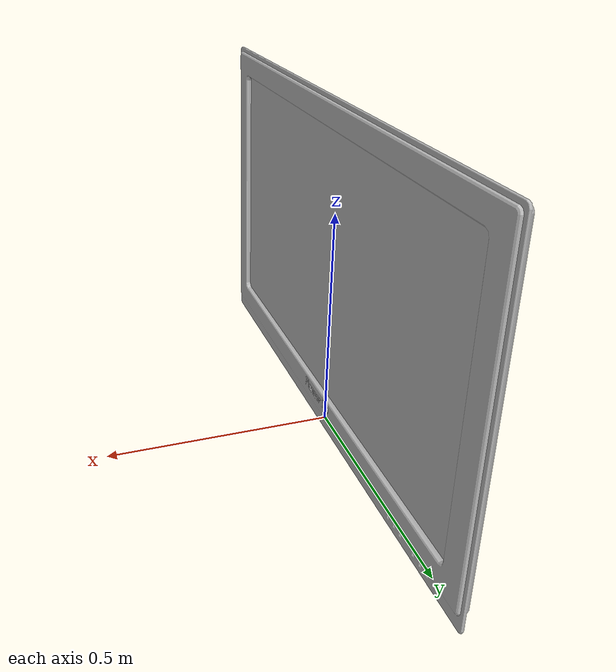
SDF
<?xml version='1.0'?>
<sdf version='1.4'>
  <model name='228'>
    <pose>0 0 0 0 0 0</pose>
    <static>true</static>
    <link name='link'>
      <collision name='collision'>
        <pose>0 0 0 0 0 0</pose>
        <geometry>
          <box>
            <size>0.05 1.24002 2</size>
          </box>
        </geometry>
      </collision>
      <visual name='visual'>
        <pose>0 0 0 0 0 0</pose>
        <geometry>
          <mesh><uri>model://228/228.dae</uri></mesh>
        </geometry>
      </visual>
    </link>
  </model>
</sdf>
